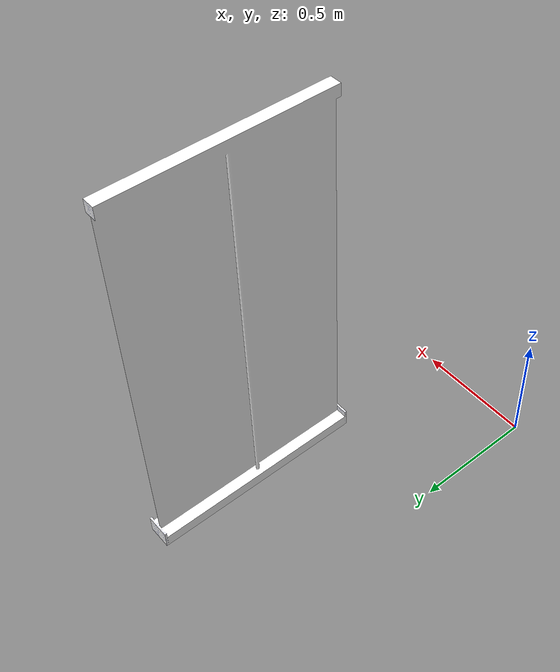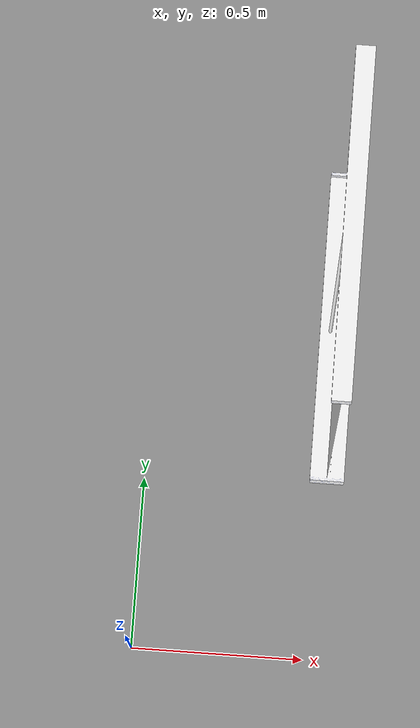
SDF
<?xml version="1.0" ?>
<sdf version="1.6">
  <model name="banner">
    <static>true</static>
    <link name="link">
      <collision name="collision">
        <geometry>
          <mesh>
            <scale>1 1.5 1</scale>
            <uri>model://banner/meshes/banner.dae</uri>
          </mesh>
        </geometry>
      </collision>
      <visual name="visual">
        <geometry>
          <mesh>
            <scale>1 1.5 1</scale>
            <uri>model://banner/meshes/banner.dae</uri>
          </mesh>
        </geometry>
       <material>
         <script>
           <uri>model://banner/materials/scripts</uri>
           <uri>model://banner/materials/textures</uri>
           <name>FlipChart/Diffuse</name>
         </script>
       </material>
      </visual>
    </link>
  </model>
</sdf>
